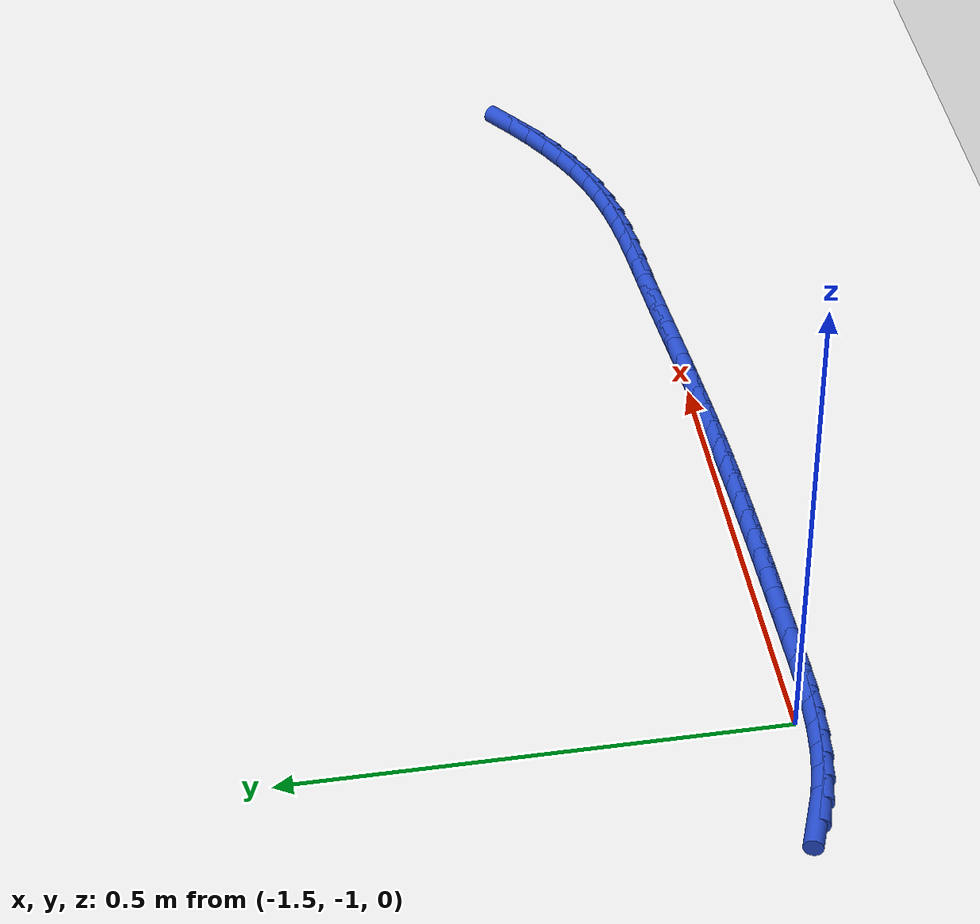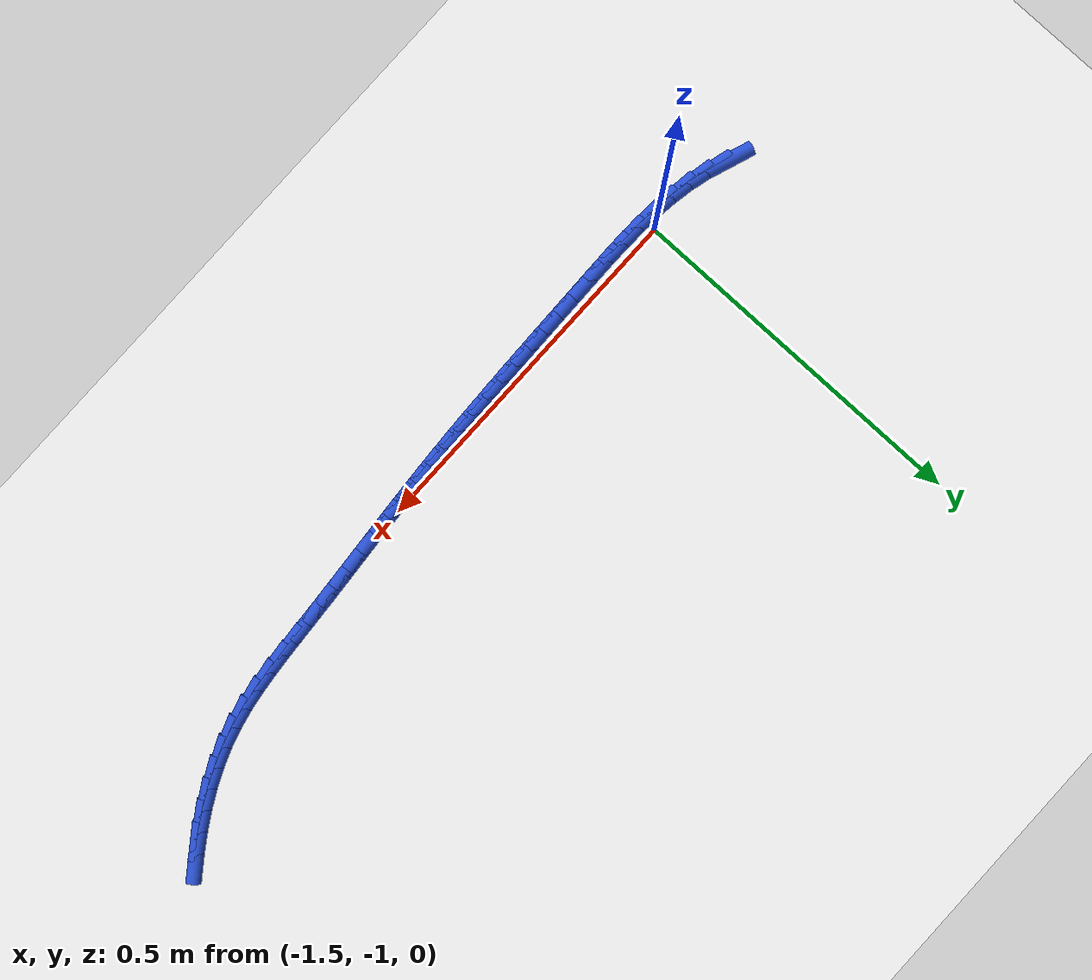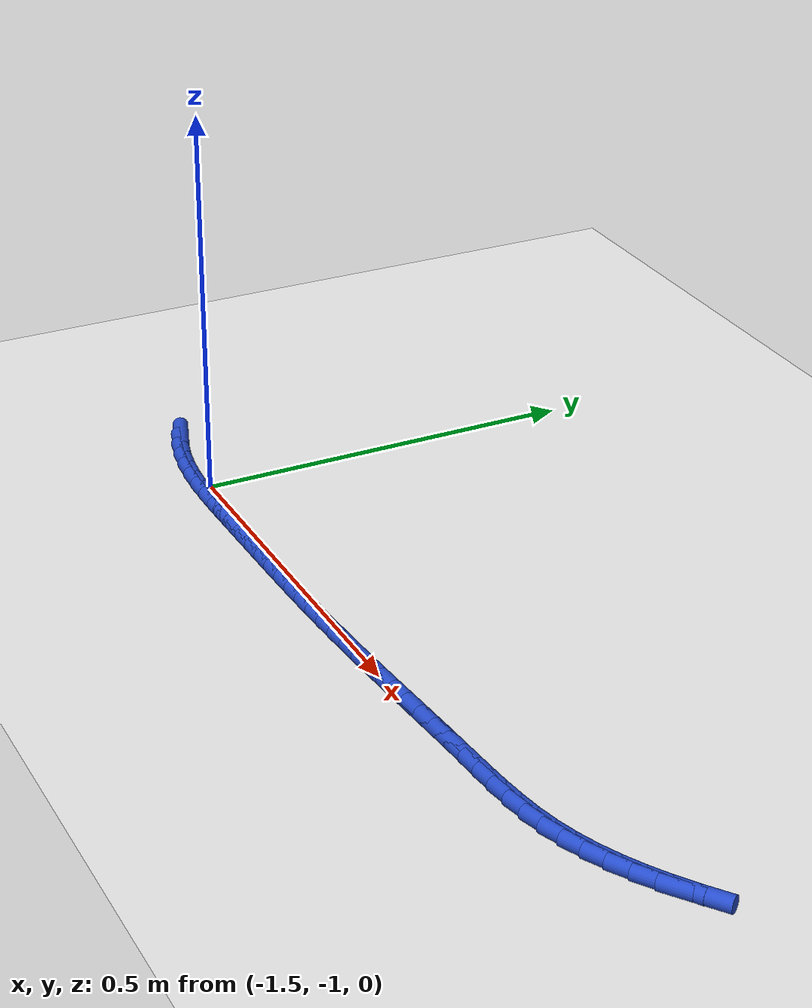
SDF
<sdf version="1.6">
 <world name="default">
  <model name="ground_plane">
   <static>1</static>
   <link name="link">
    <collision name="collision">
     <geometry><plane><normal>0 0 1</normal><size>100 100</size></plane></geometry>
     <surface><friction><ode><mu>100</mu><mu2>50</mu2></ode></friction></surface>
    </collision>
    <visual name="visual">
     <cast_shadows>0</cast_shadows>
     <geometry><plane><normal>0 0 1</normal><size>100 100</size></plane></geometry>
     <material>
      <script><uri>file://media/materials/scripts/gazebo.material</uri><name>Gazebo/WhiteGlow</name></script>
     </material>
    </visual>
   </link>
  </model>
  <model name="line">
   <link name="link_163">
    <pose>-1.6269656413347526 -0.9902039996527692 0.01 0 1.57 -0.34532407669705995</pose>
    <collision name="collision">
     <geometry><cylinder><radius>0.01</radius><length>0.08</length></cylinder></geometry>
    </collision>
    <visual name="visual">
     <material>
      <script><name>Gazebo/Blue</name><uri>file://media/materials/scripts/gazebo.material</uri></script>
     </material>
     <geometry><cylinder><radius>0.01</radius><length>0.08</length></cylinder></geometry>
    </visual>
   </link>
   <link name="link_164">
    <pose>-1.6007694602872609 -0.9996277749214585 0.01 0 1.57 -0.2581669308352691</pose>
    <collision name="collision">
     <geometry><cylinder><radius>0.01</radius><length>0.08</length></cylinder></geometry>
    </collision>
    <visual name="visual">
     <material>
      <script><name>Gazebo/Blue</name><uri>file://media/materials/scripts/gazebo.material</uri></script>
     </material>
     <geometry><cylinder><radius>0.01</radius><length>0.08</length></cylinder></geometry>
    </visual>
   </link>
   <link name="link_165">
    <pose>-1.5736693833210287 -1.0067838132608282 0.01 0 1.57 -0.18395086621314632</pose>
    <collision name="collision">
     <geometry><cylinder><radius>0.01</radius><length>0.08</length></cylinder></geometry>
    </collision>
    <visual name="visual">
     <material>
      <script><name>Gazebo/Blue</name><uri>file://media/materials/scripts/gazebo.material</uri></script>
     </material>
     <geometry><cylinder><radius>0.01</radius><length>0.08</length></cylinder></geometry>
    </visual>
   </link>
   <link name="link_166">
    <pose>-1.5458093712285415 -1.0119672849038546 0.01 0 1.57 -0.12258334849173207</pose>
    <collision name="collision">
     <geometry><cylinder><radius>0.01</radius><length>0.08</length></cylinder></geometry>
    </collision>
    <visual name="visual">
     <material>
      <script><name>Gazebo/Blue</name><uri>file://media/materials/scripts/gazebo.material</uri></script>
     </material>
     <geometry><cylinder><radius>0.01</radius><length>0.08</length></cylinder></geometry>
    </visual>
   </link>
   <link name="link_167">
    <pose>-1.5173342799972342 -1.0154754465685312 0.01 0 1.57 -0.0734583687192283</pose>
    <collision name="collision">
     <geometry><cylinder><radius>0.01</radius><length>0.08</length></cylinder></geometry>
    </collision>
    <visual name="visual">
     <material>
      <script><name>Gazebo/Blue</name><uri>file://media/materials/scripts/gazebo.material</uri></script>
     </material>
     <geometry><cylinder><radius>0.01</radius><length>0.08</length></cylinder></geometry>
    </visual>
   </link>
   <link name="link_168">
    <pose>-1.4883889656145433 -1.0176055549728529 0.01 0 1.57 -0.035833217943328895</pose>
    <collision name="collision">
     <geometry><cylinder><radius>0.01</radius><length>0.08</length></cylinder></geometry>
    </collision>
    <visual name="visual">
     <material>
      <script><name>Gazebo/Blue</name><uri>file://media/materials/scripts/gazebo.material</uri></script>
     </material>
     <geometry><cylinder><radius>0.01</radius><length>0.08</length></cylinder></geometry>
    </visual>
   </link>
   <link name="link_169">
    <pose>-1.4591182840679038 -1.018654866834813 0.01 0 1.57 -0.009023906978352592</pose>
    <collision name="collision">
     <geometry><cylinder><radius>0.01</radius><length>0.08</length></cylinder></geometry>
    </collision>
    <visual name="visual">
     <material>
      <script><name>Gazebo/Blue</name><uri>file://media/materials/scripts/gazebo.material</uri></script>
     </material>
     <geometry><cylinder><radius>0.01</radius><length>0.08</length></cylinder></geometry>
    </visual>
   </link>
   <link name="link_170">
    <pose>-1.4296670913447498 -1.018920638872406 0.01 0 1.57 0.007478146151760869</pose>
    <collision name="collision">
     <geometry><cylinder><radius>0.01</radius><length>0.08</length></cylinder></geometry>
    </collision>
    <visual name="visual">
     <material>
      <script><name>Gazebo/Blue</name><uri>file://media/materials/scripts/gazebo.material</uri></script>
     </material>
     <geometry><cylinder><radius>0.01</radius><length>0.08</length></cylinder></geometry>
    </visual>
   </link>
   <link name="link_171">
    <pose>-1.4001802434325197 -1.0187001278036256 0.01 0 1.57 0.014006668564829301</pose>
    <collision name="collision">
     <geometry><cylinder><radius>0.01</radius><length>0.08</length></cylinder></geometry>
    </collision>
    <visual name="visual">
     <material>
      <script><name>Gazebo/Blue</name><uri>file://media/materials/scripts/gazebo.material</uri></script>
     </material>
     <geometry><cylinder><radius>0.01</radius><length>0.08</length></cylinder></geometry>
    </visual>
   </link>
   <link name="link_172">
    <pose>-1.3708015631302826 -1.0182886034535312 0.01 0 1.57 0.014591082415049646</pose>
    <collision name="collision">
     <geometry><cylinder><radius>0.01</radius><length>0.08</length></cylinder></geometry>
    </collision>
    <visual name="visual">
     <material>
      <script><name>Gazebo/Blue</name><uri>file://media/materials/scripts/gazebo.material</uri></script>
     </material>
     <geometry><cylinder><radius>0.01</radius><length>0.08</length></cylinder></geometry>
    </visual>
   </link>
   <link name="link_173">
    <pose>-1.3416131736351418 -1.017862683030308 0.01 0 1.57 0.015416454376281086</pose>
    <collision name="collision">
     <geometry><cylinder><radius>0.01</radius><length>0.08</length></cylinder></geometry>
    </collision>
    <visual name="visual">
     <material>
      <script><name>Gazebo/Blue</name><uri>file://media/materials/scripts/gazebo.material</uri></script>
     </material>
     <geometry><cylinder><radius>0.01</radius><length>0.08</length></cylinder></geometry>
    </visual>
   </link>
   <link name="link_174">
    <pose>-1.3126017311125913 -1.0174153940144182 0.01 0 1.57 0.017027211075854462</pose>
    <collision name="collision">
     <geometry><cylinder><radius>0.01</radius><length>0.08</length></cylinder></geometry>
    </collision>
    <visual name="visual">
     <material>
      <script><name>Gazebo/Blue</name><uri>file://media/materials/scripts/gazebo.material</uri></script>
     </material>
     <geometry><cylinder><radius>0.01</radius><length>0.08</length></cylinder></geometry>
    </visual>
   </link>
   <link name="link_175">
    <pose>-1.2837456990387974 -1.0169240087761295 0.01 0 1.57 0.019432342892606896</pose>
    <collision name="collision">
     <geometry><cylinder><radius>0.01</radius><length>0.08</length></cylinder></geometry>
    </collision>
    <visual name="visual">
     <material>
      <script><name>Gazebo/Blue</name><uri>file://media/materials/scripts/gazebo.material</uri></script>
     </material>
     <geometry><cylinder><radius>0.01</radius><length>0.08</length></cylinder></geometry>
    </visual>
   </link>
   <link name="link_176">
    <pose>-1.2550235408899264 -1.0163657996857107 0.01 0 1.57 0.022637328845868332</pose>
    <collision name="collision">
     <geometry><cylinder><radius>0.01</radius><length>0.08</length></cylinder></geometry>
    </collision>
    <visual name="visual">
     <material>
      <script><name>Gazebo/Blue</name><uri>file://media/materials/scripts/gazebo.material</uri></script>
     </material>
     <geometry><cylinder><radius>0.01</radius><length>0.08</length></cylinder></geometry>
    </visual>
   </link>
   <link name="link_177">
    <pose>-1.2264137201421446 -1.0157180391134297 0.01 0 1.57 0.026643967003108695</pose>
    <collision name="collision">
     <geometry><cylinder><radius>0.01</radius><length>0.08</length></cylinder></geometry>
    </collision>
    <visual name="visual">
     <material>
      <script><name>Gazebo/Blue</name><uri>file://media/materials/scripts/gazebo.material</uri></script>
     </material>
     <geometry><cylinder><radius>0.01</radius><length>0.08</length></cylinder></geometry>
    </visual>
   </link>
   <link name="link_178">
    <pose>-1.197894700271619 -1.0149579994295546 0.01 0 1.57 0.03145022822312494</pose>
    <collision name="collision">
     <geometry><cylinder><radius>0.01</radius><length>0.08</length></cylinder></geometry>
    </collision>
    <visual name="visual">
     <material>
      <script><name>Gazebo/Blue</name><uri>file://media/materials/scripts/gazebo.material</uri></script>
     </material>
     <geometry><cylinder><radius>0.01</radius><length>0.08</length></cylinder></geometry>
    </visual>
   </link>
   <link name="link_179">
    <pose>-1.1694449447545157 -1.0140629530043532 0.01 0 1.57 0.03705013747239911</pose>
    <collision name="collision">
     <geometry><cylinder><radius>0.01</radius><length>0.08</length></cylinder></geometry>
    </collision>
    <visual name="visual">
     <material>
      <script><name>Gazebo/Blue</name><uri>file://media/materials/scripts/gazebo.material</uri></script>
     </material>
     <geometry><cylinder><radius>0.01</radius><length>0.08</length></cylinder></geometry>
    </visual>
   </link>
   <link name="link_180">
    <pose>-1.1410429170670005 -1.013010172208094 0.01 0 1.57 0.043433687198880896</pose>
    <collision name="collision">
     <geometry><cylinder><radius>0.01</radius><length>0.08</length></cylinder></geometry>
    </collision>
    <visual name="visual">
     <material>
      <script><name>Gazebo/Blue</name><uri>file://media/materials/scripts/gazebo.material</uri></script>
     </material>
     <geometry><cylinder><radius>0.01</radius><length>0.08</length></cylinder></geometry>
    </visual>
   </link>
   <link name="link_181">
    <pose>-1.1126670806852406 -1.0117769294110452 0.01 0 1.57 0.050586787354397776</pose>
    <collision name="collision">
     <geometry><cylinder><radius>0.01</radius><length>0.08</length></cylinder></geometry>
    </collision>
    <visual name="visual">
     <material>
      <script><name>Gazebo/Blue</name><uri>file://media/materials/scripts/gazebo.material</uri></script>
     </material>
     <geometry><cylinder><radius>0.01</radius><length>0.08</length></cylinder></geometry>
    </visual>
   </link>
   <link name="link_182">
    <pose>-1.0842958990854017 -1.0103404969834746 0.01 0 1.57 0.05836175773276048</pose>
    <collision name="collision">
     <geometry><cylinder><radius>0.01</radius><length>0.08</length></cylinder></geometry>
    </collision>
    <visual name="visual">
     <material>
      <script><name>Gazebo/Blue</name><uri>file://media/materials/scripts/gazebo.material</uri></script>
     </material>
     <geometry><cylinder><radius>0.01</radius><length>0.08</length></cylinder></geometry>
    </visual>
   </link>
   <link name="link_183">
    <pose>-1.0559086592747986 -1.0086818842124403 0.01 0 1.57 0.06544199684372773</pose>
    <collision name="collision">
     <geometry><cylinder><radius>0.01</radius><length>0.08</length></cylinder></geometry>
    </collision>
    <visual name="visual">
     <material>
      <script><name>Gazebo/Blue</name><uri>file://media/materials/scripts/gazebo.material</uri></script>
     </material>
     <geometry><cylinder><radius>0.01</radius><length>0.08</length></cylinder></geometry>
    </visual>
   </link>
   <link name="link_184">
    <pose>-1.0274929216628175 -1.0068196423956224 0.01 0 1.57 0.07107514027039014</pose>
    <collision name="collision">
     <geometry><cylinder><radius>0.01</radius><length>0.08</length></cylinder></geometry>
    </collision>
    <visual name="visual">
     <material>
      <script><name>Gazebo/Blue</name><uri>file://media/materials/scripts/gazebo.material</uri></script>
     </material>
     <geometry><cylinder><radius>0.01</radius><length>0.08</length></cylinder></geometry>
    </visual>
   </link>
   <link name="link_185">
    <pose>-0.9990410255283743 -1.0047940077880047 0.01 0 1.57 0.07525605324221704</pose>
    <collision name="collision">
     <geometry><cylinder><radius>0.01</radius><length>0.08</length></cylinder></geometry>
    </collision>
    <visual name="visual">
     <material>
      <script><name>Gazebo/Blue</name><uri>file://media/materials/scripts/gazebo.material</uri></script>
     </material>
     <geometry><cylinder><radius>0.01</radius><length>0.08</length></cylinder></geometry>
    </visual>
   </link>
   <link name="link_186">
    <pose>-0.9705453680770735 -1.002645479497049 0.01 0 1.57 0.07799054664053584</pose>
    <collision name="collision">
     <geometry><cylinder><radius>0.01</radius><length>0.08</length></cylinder></geometry>
    </collision>
    <visual name="visual">
     <material>
      <script><name>Gazebo/Blue</name><uri>file://media/materials/scripts/gazebo.material</uri></script>
     </material>
     <geometry><cylinder><radius>0.01</radius><length>0.08</length></cylinder></geometry>
    </visual>
   </link>
   <link name="link_187">
    <pose>-0.9419983465145159 -1.0004145566302163 0.01 0 1.57 0.07928597981099769</pose>
    <collision name="collision">
     <geometry><cylinder><radius>0.01</radius><length>0.08</length></cylinder></geometry>
    </collision>
    <visual name="visual">
     <material>
      <script><name>Gazebo/Blue</name><uri>file://media/materials/scripts/gazebo.material</uri></script>
     </material>
     <geometry><cylinder><radius>0.01</radius><length>0.08</length></cylinder></geometry>
    </visual>
   </link>
   <link name="link_188">
    <pose>-0.9133923580463039 -0.9981417382949687 0.01 0 1.57 0.0791510636234605</pose>
    <collision name="collision">
     <geometry><cylinder><radius>0.01</radius><length>0.08</length></cylinder></geometry>
    </collision>
    <visual name="visual">
     <material>
      <script><name>Gazebo/Blue</name><uri>file://media/materials/scripts/gazebo.material</uri></script>
     </material>
     <geometry><cylinder><radius>0.01</radius><length>0.08</length></cylinder></geometry>
    </visual>
   </link>
   <link name="link_189">
    <pose>-0.8847197998780398 -0.995867523598767 0.01 0 1.57 0.07759575269046384</pose>
    <collision name="collision">
     <geometry><cylinder><radius>0.01</radius><length>0.08</length></cylinder></geometry>
    </collision>
    <visual name="visual">
     <material>
      <script><name>Gazebo/Blue</name><uri>file://media/materials/scripts/gazebo.material</uri></script>
     </material>
     <geometry><cylinder><radius>0.01</radius><length>0.08</length></cylinder></geometry>
    </visual>
   </link>
   <link name="link_190">
    <pose>-0.8559730692153256 -0.9936324116490727 0.01 0 1.57 0.07463122363898185</pose>
    <collision name="collision">
     <geometry><cylinder><radius>0.01</radius><length>0.08</length></cylinder></geometry>
    </collision>
    <visual name="visual">
     <material>
      <script><name>Gazebo/Blue</name><uri>file://media/materials/scripts/gazebo.material</uri></script>
     </material>
     <geometry><cylinder><radius>0.01</radius><length>0.08</length></cylinder></geometry>
    </visual>
   </link>
   <link name="link_191">
    <pose>-0.8271445632637633 -0.9914769015533472 0.01 0 1.57 0.07050673751574303</pose>
    <collision name="collision">
     <geometry><cylinder><radius>0.01</radius><length>0.08</length></cylinder></geometry>
    </collision>
    <visual name="visual">
     <material>
      <script><name>Gazebo/Blue</name><uri>file://media/materials/scripts/gazebo.material</uri></script>
     </material>
     <geometry><cylinder><radius>0.01</radius><length>0.08</length></cylinder></geometry>
    </visual>
   </link>
   <link name="link_192">
    <pose>-0.798228985151851 -0.9894347734127851 0.01 0 1.57 0.072002025349298</pose>
    <collision name="collision">
     <geometry><cylinder><radius>0.01</radius><length>0.08</length></cylinder></geometry>
    </collision>
    <visual name="visual">
     <material>
      <script><name>Gazebo/Blue</name><uri>file://media/materials/scripts/gazebo.material</uri></script>
     </material>
     <geometry><cylinder><radius>0.01</radius><length>0.08</length></cylinder></geometry>
    </visual>
   </link>
   <link name="link_193">
    <pose>-0.7692871084462818 -0.9873472910527211 0.01 0 1.57 0.0867613594462836</pose>
    <collision name="collision">
     <geometry><cylinder><radius>0.01</radius><length>0.08</length></cylinder></geometry>
    </collision>
    <visual name="visual">
     <material>
      <script><name>Gazebo/Blue</name><uri>file://media/materials/scripts/gazebo.material</uri></script>
     </material>
     <geometry><cylinder><radius>0.01</radius><length>0.08</length></cylinder></geometry>
    </visual>
   </link>
   <link name="link_194">
    <pose>-0.7404539489494422 -0.9848393910102549 0.01 0 1.57 0.11544820845654775</pose>
    <collision name="collision">
     <geometry><cylinder><radius>0.01</radius><length>0.08</length></cylinder></geometry>
    </collision>
    <visual name="visual">
     <material>
      <script><name>Gazebo/Blue</name><uri>file://media/materials/scripts/gazebo.material</uri></script>
     </material>
     <geometry><cylinder><radius>0.01</radius><length>0.08</length></cylinder></geometry>
    </visual>
   </link>
   <link name="link_195">
    <pose>-0.7118684697161966 -0.9815245083042924 0.01 0 1.57 0.1585382713779276</pose>
    <collision name="collision">
     <geometry><cylinder><radius>0.01</radius><length>0.08</length></cylinder></geometry>
    </collision>
    <visual name="visual">
     <material>
      <script><name>Gazebo/Blue</name><uri>file://media/materials/scripts/gazebo.material</uri></script>
     </material>
     <geometry><cylinder><radius>0.01</radius><length>0.08</length></cylinder></geometry>
    </visual>
   </link>
   <link name="link_196">
    <pose>-0.6836696338014095 -0.9770160779537395 0.01 0 1.57 0.21656521144743018</pose>
    <collision name="collision">
     <geometry><cylinder><radius>0.01</radius><length>0.08</length></cylinder></geometry>
    </collision>
    <visual name="visual">
     <material>
      <script><name>Gazebo/Blue</name><uri>file://media/materials/scripts/gazebo.material</uri></script>
     </material>
     <geometry><cylinder><radius>0.01</radius><length>0.08</length></cylinder></geometry>
    </visual>
   </link>
   <link name="link_197">
    <pose>-0.6559964042599455 -0.9709275349775022 0.01 0 1.57 0.2884931522760654</pose>
    <collision name="collision">
     <geometry><cylinder><radius>0.01</radius><length>0.08</length></cylinder></geometry>
    </collision>
    <visual name="visual">
     <material>
      <script><name>Gazebo/Blue</name><uri>file://media/materials/scripts/gazebo.material</uri></script>
     </material>
     <geometry><cylinder><radius>0.01</radius><length>0.08</length></cylinder></geometry>
    </visual>
   </link>
   <link name="link_198">
    <pose>-0.6289763818926419 -0.9629087356568342 0.01 0 1.57 0.3616838490075262</pose>
    <collision name="collision">
     <geometry><cylinder><radius>0.01</radius><length>0.08</length></cylinder></geometry>
    </collision>
    <visual name="visual">
     <material>
      <script><name>Gazebo/Blue</name><uri>file://media/materials/scripts/gazebo.material</uri></script>
     </material>
     <geometry><cylinder><radius>0.01</radius><length>0.08</length></cylinder></geometry>
    </visual>
   </link>
   <link name="link_199">
    <pose>-0.6026333082293875 -0.9529424531172654 0.01 0 1.57 0.42893608544170325</pose>
    <collision name="collision">
     <geometry><cylinder><radius>0.01</radius><length>0.08</length></cylinder></geometry>
    </collision>
    <visual name="visual">
     <material>
      <script><name>Gazebo/Blue</name><uri>file://media/materials/scripts/gazebo.material</uri></script>
     </material>
     <geometry><cylinder><radius>0.01</radius><length>0.08</length></cylinder></geometry>
    </visual>
   </link>
   <link name="link_200">
    <pose>-0.5769352678821489 -0.9411898665650396 0.01 0 1.57 0.48986755263992554</pose>
    <collision name="collision">
     <geometry><cylinder><radius>0.01</radius><length>0.08</length></cylinder></geometry>
    </collision>
    <visual name="visual">
     <material>
      <script><name>Gazebo/Blue</name><uri>file://media/materials/scripts/gazebo.material</uri></script>
     </material>
     <geometry><cylinder><radius>0.01</radius><length>0.08</length></cylinder></geometry>
    </visual>
   </link>
   <link name="link_201">
    <pose>-0.5518498162779366 -0.9278138514881581 0.01 0 1.57 0.5444121351341387</pose>
    <collision name="collision">
     <geometry><cylinder><radius>0.01</radius><length>0.08</length></cylinder></geometry>
    </collision>
    <visual name="visual">
     <material>
      <script><name>Gazebo/Blue</name><uri>file://media/materials/scripts/gazebo.material</uri></script>
     </material>
     <geometry><cylinder><radius>0.01</radius><length>0.08</length></cylinder></geometry>
    </visual>
   </link>
   <link name="link_202">
    <pose>-0.5273445088437589 -0.9129772833746214 0.01 0 1.57 0.5926839132831186</pose>
    <collision name="collision">
     <geometry><cylinder><radius>0.01</radius><length>0.08</length></cylinder></geometry>
    </collision>
    <visual name="visual">
     <material>
      <script><name>Gazebo/Blue</name><uri>file://media/materials/scripts/gazebo.material</uri></script>
     </material>
     <geometry><cylinder><radius>0.01</radius><length>0.08</length></cylinder></geometry>
    </visual>
   </link>
   <link name="link_203">
    <pose>-0.5033869010066253 -0.8968430377124299 0.01 0 1.57 0.6349088133521671</pose>
    <collision name="collision">
     <geometry><cylinder><radius>0.01</radius><length>0.08</length></cylinder></geometry>
    </collision>
    <visual name="visual">
     <material>
      <script><name>Gazebo/Blue</name><uri>file://media/materials/scripts/gazebo.material</uri></script>
     </material>
     <geometry><cylinder><radius>0.01</radius><length>0.08</length></cylinder></geometry>
    </visual>
   </link>
  </model>
 </world>
</sdf>
